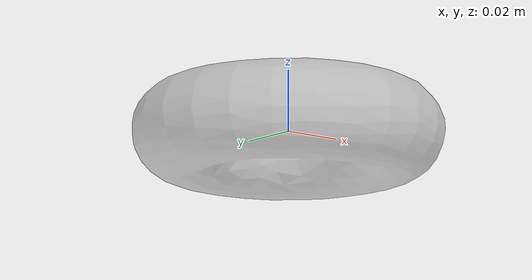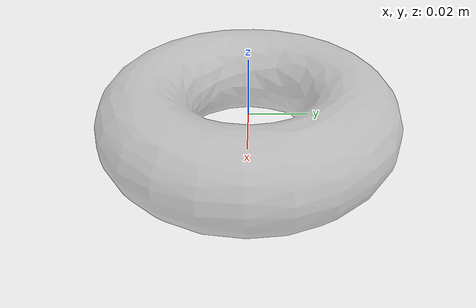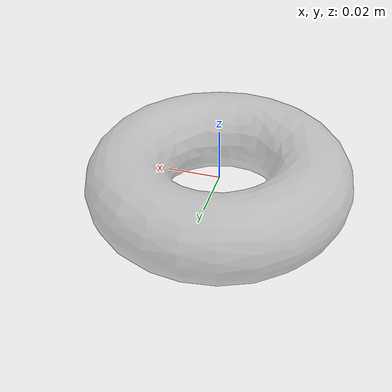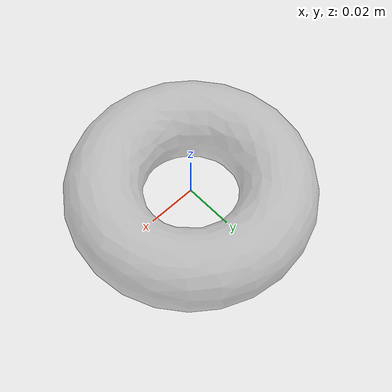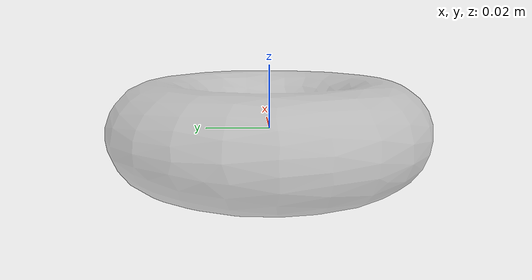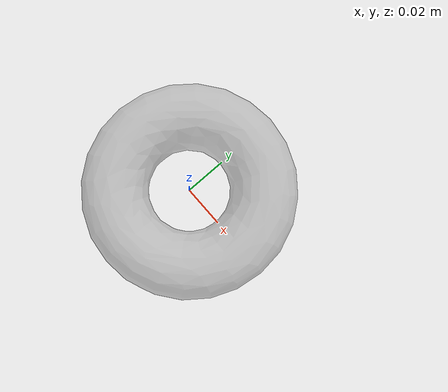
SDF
<?xml version='1.0'?>
<sdf version='1.4'>
  <model name="object">
    <link name='link'>
      <pose>0.0 0 0 0 0 0</pose>
      <inertial>
        <mass>0.2</mass>
        <inertia>
          <ixx>1.46806185824e-04</ixx>
          <ixy>0</ixy>
          <ixz>0</ixz>
          <iyy>1.4669854977e-04</iyy>
          <iyz>0</iyz>
          <izz>0.00026997174</izz>
        </inertia>
      </inertial>
      <collision name='c_bp_022'>
        <geometry>
          <mesh>
            <scale>1 1 1</scale>
            <uri>model://donut_poisson_002/mesh/donut_poisson_002.dae</uri>
          </mesh>
        </geometry>
        <surface>
          <contact>
            <ode>
              <kp>1000000</kp>
              <kd>100</kd>
              <max_vel>1000.0</max_vel>
              <min_depth>0.0</min_depth>
            </ode>
          </contact>
        </surface>
      </collision>

      <visual name='v_bp_022'>
        <geometry>
          <mesh>
            <scale>1 1 1</scale>
            <uri>model://donut_poisson_002/mesh/donut_poisson_002.dae</uri>
          </mesh>
        </geometry>
        <material>
          <script>
            <name>Gazebo/GreyTransparent</name>
            <uri>file://media/materials/scripts/gazebo.material</uri>
          </script>
        </material>
      </visual>

      <velocity_decay>
        <linear>0.0004</linear>
        <angular>0.0004</angular>
      </velocity_decay>
    </link>
  </model>
</sdf>
